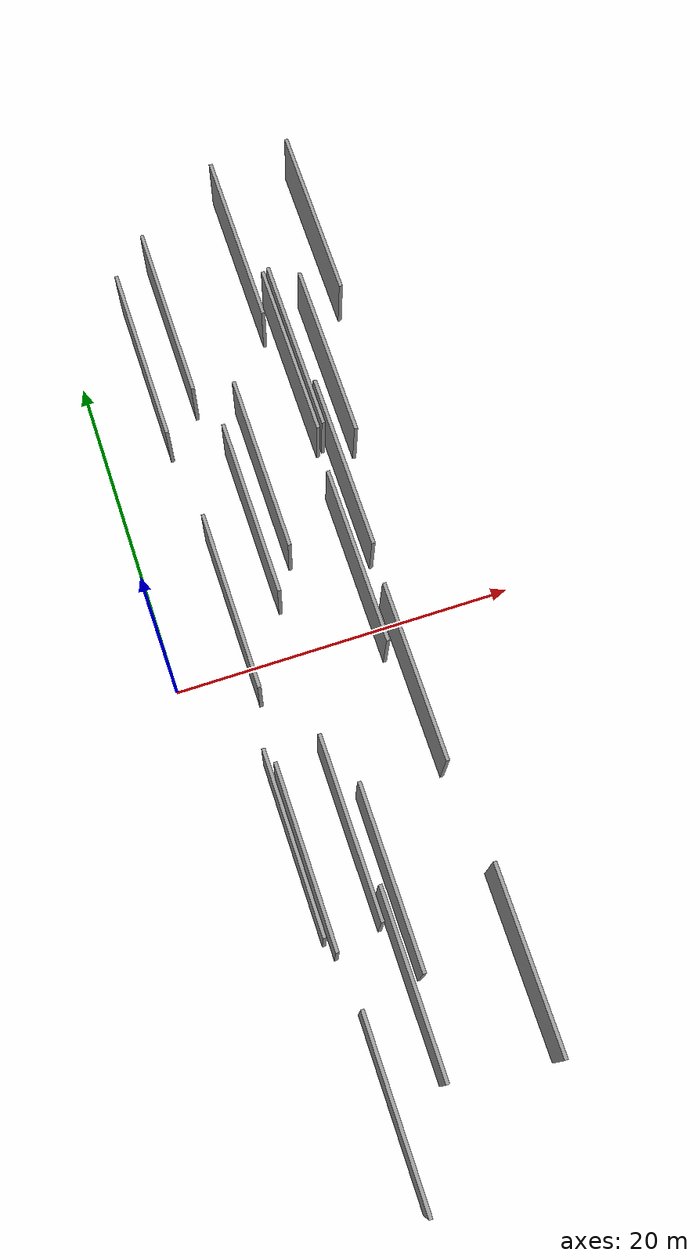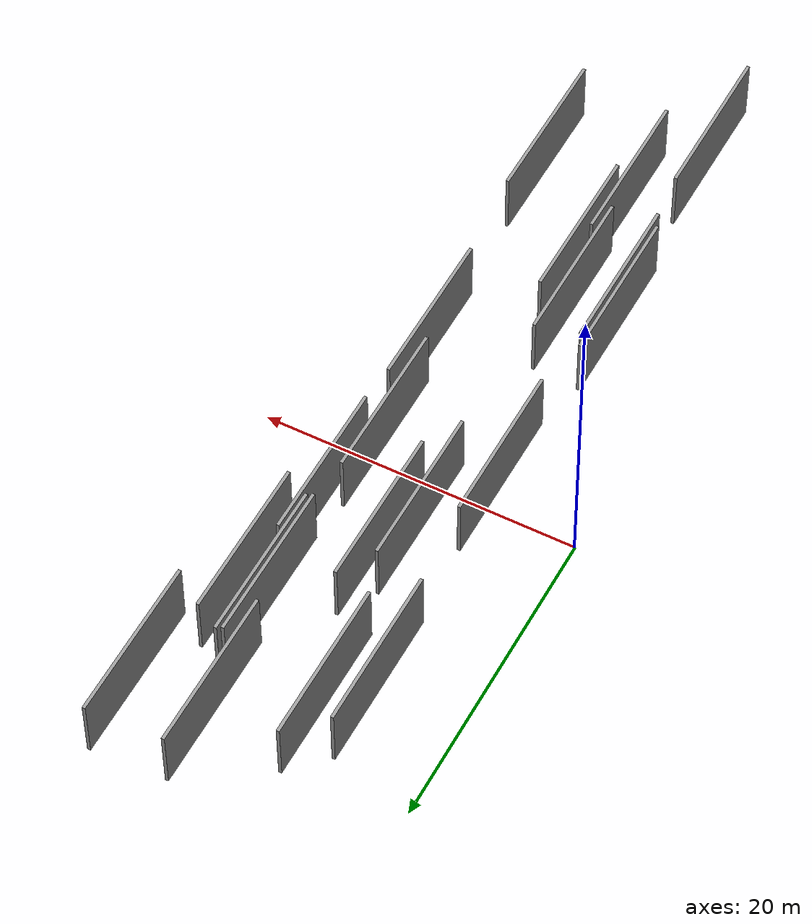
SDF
<sdf version="1.6">
 <world name="default">
  <scene>
   <sky><clouds><speed>12</speed></clouds></sky>
   <ambient>0.4 0.4 0.4 1</ambient>
   <background>0.7 0.7 0.7 1</background>
   <shadows>1</shadows>
  </scene>
  <gravity>0 0 -9.8066</gravity>
  <magnetic_field>6e-06 2.3e-05 -4.2e-05</magnetic_field>
  <physics default="0" name="default_physics" type="ode">
   <ode>
    <solver>
     <type>quick</type>
     <iters>10</iters>
     <sor>1.0</sor>
     <use_dynamic_moi_rescaling>0</use_dynamic_moi_rescaling>
    </solver>
    <constraints>
     <cfm>0</cfm>
     <erp>0.2</erp>
     <contact_max_correcting_vel>100</contact_max_correcting_vel>
     <contact_surface_layer>0.001</contact_surface_layer>
    </constraints>
   </ode>
   <max_step_size>0.004</max_step_size>
   <real_time_factor>1</real_time_factor>
   <real_time_update_rate>250</real_time_update_rate>
  </physics>
  <light name="sun" type="directional">
   <pose>0 0 10 0 0 0</pose>
   <diffuse>0.8 0.8 0.8 1</diffuse>
   <specular>0.2 0.2 0.2 1</specular>
   <attenuation>
    <range>1000</range>
    <constant>0.9</constant>
    <linear>0.01</linear>
    <quadratic>0.001</quadratic>
   </attenuation>
   <direction>-0.5 0.1 -0.9</direction>
  </light>
  <model name="grey_wall_1">
   <static>1</static>
   <pose>12.5194 -20.7181 5.0 0.000000 0.000000 1.570796</pose>
   <link name="link">
    <pose>0 0 2.00 0 0 0</pose>
    <collision name="collision"><geometry><box><size>10.00 0.2 4.00</size></box></geometry></collision>
    <visual name="visual">
     <cast_shadows>0</cast_shadows>
     <geometry><box><size>10.00 0.2 4.00</size></box></geometry>
     <material>
      <script>
       <uri>model://grey_wall/materials/scripts</uri>
       <uri>model://grey_wall/materials/textures</uri>
       <name>vrc/grey_wall</name>
      </script>
     </material>
    </visual>
   </link>
  </model>
  <model name="grey_wall_2">
   <static>1</static>
   <pose>3.9833 -25.4585 5.0 0.000000 0.000000 1.570796</pose>
   <link name="link">
    <pose>0 0 2.00 0 0 0</pose>
    <collision name="collision"><geometry><box><size>10.00 0.2 4.00</size></box></geometry></collision>
    <visual name="visual">
     <cast_shadows>0</cast_shadows>
     <geometry><box><size>10.00 0.2 4.00</size></box></geometry>
     <material>
      <script>
       <uri>model://grey_wall/materials/scripts</uri>
       <uri>model://grey_wall/materials/textures</uri>
       <name>vrc/grey_wall</name>
      </script>
     </material>
    </visual>
   </link>
  </model>
  <model name="grey_wall_3">
   <static>1</static>
   <pose>10.7550 21.8857 5.0 0.000000 0.000000 1.570796</pose>
   <link name="link">
    <pose>0 0 2.00 0 0 0</pose>
    <collision name="collision"><geometry><box><size>10.00 0.2 4.00</size></box></geometry></collision>
    <visual name="visual">
     <cast_shadows>0</cast_shadows>
     <geometry><box><size>10.00 0.2 4.00</size></box></geometry>
     <material>
      <script>
       <uri>model://grey_wall/materials/scripts</uri>
       <uri>model://grey_wall/materials/textures</uri>
       <name>vrc/grey_wall</name>
      </script>
     </material>
    </visual>
   </link>
  </model>
  <model name="grey_wall_4">
   <static>1</static>
   <pose>11.2011 1.7666 5.0 0.000000 0.000000 1.570796</pose>
   <link name="link">
    <pose>0 0 2.00 0 0 0</pose>
    <collision name="collision"><geometry><box><size>10.00 0.2 4.00</size></box></geometry></collision>
    <visual name="visual">
     <cast_shadows>0</cast_shadows>
     <geometry><box><size>10.00 0.2 4.00</size></box></geometry>
     <material>
      <script>
       <uri>model://grey_wall/materials/scripts</uri>
       <uri>model://grey_wall/materials/textures</uri>
       <name>vrc/grey_wall</name>
      </script>
     </material>
    </visual>
   </link>
  </model>
  <model name="grey_wall_5">
   <static>1</static>
   <pose>12.0166 -5.1796 5.0 0.000000 0.000000 1.570796</pose>
   <link name="link">
    <pose>0 0 2.00 0 0 0</pose>
    <collision name="collision"><geometry><box><size>10.00 0.2 4.00</size></box></geometry></collision>
    <visual name="visual">
     <cast_shadows>0</cast_shadows>
     <geometry><box><size>10.00 0.2 4.00</size></box></geometry>
     <material>
      <script>
       <uri>model://grey_wall/materials/scripts</uri>
       <uri>model://grey_wall/materials/textures</uri>
       <name>vrc/grey_wall</name>
      </script>
     </material>
    </visual>
   </link>
  </model>
  <model name="grey_wall_6">
   <static>1</static>
   <pose>6.6592 6.1158 5.0 0.000000 0.000000 1.570796</pose>
   <link name="link">
    <pose>0 0 2.00 0 0 0</pose>
    <collision name="collision"><geometry><box><size>10.00 0.2 4.00</size></box></geometry></collision>
    <visual name="visual">
     <cast_shadows>0</cast_shadows>
     <geometry><box><size>10.00 0.2 4.00</size></box></geometry>
     <material>
      <script>
       <uri>model://grey_wall/materials/scripts</uri>
       <uri>model://grey_wall/materials/textures</uri>
       <name>vrc/grey_wall</name>
      </script>
     </material>
    </visual>
   </link>
  </model>
  <model name="grey_wall_7">
   <static>1</static>
   <pose>11.8590 14.5193 5.0 0.000000 0.000000 1.570796</pose>
   <link name="link">
    <pose>0 0 2.00 0 0 0</pose>
    <collision name="collision"><geometry><box><size>10.00 0.2 4.00</size></box></geometry></collision>
    <visual name="visual">
     <cast_shadows>0</cast_shadows>
     <geometry><box><size>10.00 0.2 4.00</size></box></geometry>
     <material>
      <script>
       <uri>model://grey_wall/materials/scripts</uri>
       <uri>model://grey_wall/materials/textures</uri>
       <name>vrc/grey_wall</name>
      </script>
     </material>
    </visual>
   </link>
  </model>
  <model name="grey_wall_8">
   <static>1</static>
   <pose>6.2745 -11.8314 5.0 0.000000 0.000000 1.570796</pose>
   <link name="link">
    <pose>0 0 2.00 0 0 0</pose>
    <collision name="collision"><geometry><box><size>10.00 0.2 4.00</size></box></geometry></collision>
    <visual name="visual">
     <cast_shadows>0</cast_shadows>
     <geometry><box><size>10.00 0.2 4.00</size></box></geometry>
     <material>
      <script>
       <uri>model://grey_wall/materials/scripts</uri>
       <uri>model://grey_wall/materials/textures</uri>
       <name>vrc/grey_wall</name>
      </script>
     </material>
    </visual>
   </link>
  </model>
  <model name="grey_wall_9">
   <static>1</static>
   <pose>3.3178 -11.6795 5.0 0.000000 0.000000 1.570796</pose>
   <link name="link">
    <pose>0 0 2.00 0 0 0</pose>
    <collision name="collision"><geometry><box><size>10.00 0.2 4.00</size></box></geometry></collision>
    <visual name="visual">
     <cast_shadows>0</cast_shadows>
     <geometry><box><size>10.00 0.2 4.00</size></box></geometry>
     <material>
      <script>
       <uri>model://grey_wall/materials/scripts</uri>
       <uri>model://grey_wall/materials/textures</uri>
       <name>vrc/grey_wall</name>
      </script>
     </material>
    </visual>
   </link>
  </model>
  <model name="grey_wall_10">
   <static>1</static>
   <pose>7.9572 8.3793 5.0 0.000000 0.000000 1.570796</pose>
   <link name="link">
    <pose>0 0 2.00 0 0 0</pose>
    <collision name="collision"><geometry><box><size>10.00 0.2 4.00</size></box></geometry></collision>
    <visual name="visual">
     <cast_shadows>0</cast_shadows>
     <geometry><box><size>10.00 0.2 4.00</size></box></geometry>
     <material>
      <script>
       <uri>model://grey_wall/materials/scripts</uri>
       <uri>model://grey_wall/materials/textures</uri>
       <name>vrc/grey_wall</name>
      </script>
     </material>
    </visual>
   </link>
  </model>
  <model name="grey_wall_11">
   <static>1</static>
   <pose>11.5064 14.3454 5.0 0.000000 0.000000 1.570796</pose>
   <link name="link">
    <pose>0 0 2.00 0 0 0</pose>
    <collision name="collision"><geometry><box><size>10.00 0.2 4.00</size></box></geometry></collision>
    <visual name="visual">
     <cast_shadows>0</cast_shadows>
     <geometry><box><size>10.00 0.2 4.00</size></box></geometry>
     <material>
      <script>
       <uri>model://grey_wall/materials/scripts</uri>
       <uri>model://grey_wall/materials/textures</uri>
       <name>vrc/grey_wall</name>
      </script>
     </material>
    </visual>
   </link>
  </model>
  <model name="grey_wall_12">
   <static>1</static>
   <pose>15.3811 22.1482 5.0 0.000000 0.000000 1.570796</pose>
   <link name="link">
    <pose>0 0 2.00 0 0 0</pose>
    <collision name="collision"><geometry><box><size>10.00 0.2 4.00</size></box></geometry></collision>
    <visual name="visual">
     <cast_shadows>0</cast_shadows>
     <geometry><box><size>10.00 0.2 4.00</size></box></geometry>
     <material>
      <script>
       <uri>model://grey_wall/materials/scripts</uri>
       <uri>model://grey_wall/materials/textures</uri>
       <name>vrc/grey_wall</name>
      </script>
     </material>
    </visual>
   </link>
  </model>
  <model name="grey_wall_13">
   <static>1</static>
   <pose>4.0931 1.4488 5.0 0.000000 0.000000 1.570796</pose>
   <link name="link">
    <pose>0 0 2.00 0 0 0</pose>
    <collision name="collision"><geometry><box><size>10.00 0.2 4.00</size></box></geometry></collision>
    <visual name="visual">
     <cast_shadows>0</cast_shadows>
     <geometry><box><size>10.00 0.2 4.00</size></box></geometry>
     <material>
      <script>
       <uri>model://grey_wall/materials/scripts</uri>
       <uri>model://grey_wall/materials/textures</uri>
       <name>vrc/grey_wall</name>
      </script>
     </material>
    </visual>
   </link>
  </model>
  <model name="grey_wall_14">
   <static>1</static>
   <pose>3.6320 16.6103 5.0 0.000000 0.000000 1.570796</pose>
   <link name="link">
    <pose>0 0 2.00 0 0 0</pose>
    <collision name="collision"><geometry><box><size>10.00 0.2 4.00</size></box></geometry></collision>
    <visual name="visual">
     <cast_shadows>0</cast_shadows>
     <geometry><box><size>10.00 0.2 4.00</size></box></geometry>
     <material>
      <script>
       <uri>model://grey_wall/materials/scripts</uri>
       <uri>model://grey_wall/materials/textures</uri>
       <name>vrc/grey_wall</name>
      </script>
     </material>
    </visual>
   </link>
  </model>
  <model name="grey_wall_15">
   <static>1</static>
   <pose>7.4076 -14.8116 5.0 0.000000 0.000000 1.570796</pose>
   <link name="link">
    <pose>0 0 2.00 0 0 0</pose>
    <collision name="collision"><geometry><box><size>10.00 0.2 4.00</size></box></geometry></collision>
    <visual name="visual">
     <cast_shadows>0</cast_shadows>
     <geometry><box><size>10.00 0.2 4.00</size></box></geometry>
     <material>
      <script>
       <uri>model://grey_wall/materials/scripts</uri>
       <uri>model://grey_wall/materials/textures</uri>
       <name>vrc/grey_wall</name>
      </script>
     </material>
    </visual>
   </link>
  </model>
  <model name="grey_wall_16">
   <static>1</static>
   <pose>6.7441 -20.0265 5.0 0.000000 0.000000 1.570796</pose>
   <link name="link">
    <pose>0 0 2.00 0 0 0</pose>
    <collision name="collision"><geometry><box><size>10.00 0.2 4.00</size></box></geometry></collision>
    <visual name="visual">
     <cast_shadows>0</cast_shadows>
     <geometry><box><size>10.00 0.2 4.00</size></box></geometry>
     <material>
      <script>
       <uri>model://grey_wall/materials/scripts</uri>
       <uri>model://grey_wall/materials/textures</uri>
       <name>vrc/grey_wall</name>
      </script>
     </material>
    </visual>
   </link>
  </model>
  <model name="grey_wall_17">
   <static>1</static>
   <pose>5.7139 18.6696 5.0 0.000000 0.000000 1.570796</pose>
   <link name="link">
    <pose>0 0 2.00 0 0 0</pose>
    <collision name="collision"><geometry><box><size>10.00 0.2 4.00</size></box></geometry></collision>
    <visual name="visual">
     <cast_shadows>0</cast_shadows>
     <geometry><box><size>10.00 0.2 4.00</size></box></geometry>
     <material>
      <script>
       <uri>model://grey_wall/materials/scripts</uri>
       <uri>model://grey_wall/materials/textures</uri>
       <name>vrc/grey_wall</name>
      </script>
     </material>
    </visual>
   </link>
  </model>
  <model name="grey_wall_18">
   <static>1</static>
   <pose>13.4315 13.6559 5.0 0.000000 0.000000 1.570796</pose>
   <link name="link">
    <pose>0 0 2.00 0 0 0</pose>
    <collision name="collision"><geometry><box><size>10.00 0.2 4.00</size></box></geometry></collision>
    <visual name="visual">
     <cast_shadows>0</cast_shadows>
     <geometry><box><size>10.00 0.2 4.00</size></box></geometry>
     <material>
      <script>
       <uri>model://grey_wall/materials/scripts</uri>
       <uri>model://grey_wall/materials/textures</uri>
       <name>vrc/grey_wall</name>
      </script>
     </material>
    </visual>
   </link>
  </model>
  <model name="grey_wall_19">
   <static>1</static>
   <pose>3.6857 -12.5373 5.0 0.000000 0.000000 1.570796</pose>
   <link name="link">
    <pose>0 0 2.00 0 0 0</pose>
    <collision name="collision"><geometry><box><size>10.00 0.2 4.00</size></box></geometry></collision>
    <visual name="visual">
     <cast_shadows>0</cast_shadows>
     <geometry><box><size>10.00 0.2 4.00</size></box></geometry>
     <material>
      <script>
       <uri>model://grey_wall/materials/scripts</uri>
       <uri>model://grey_wall/materials/textures</uri>
       <name>vrc/grey_wall</name>
      </script>
     </material>
    </visual>
   </link>
  </model>
  <model name="grey_wall_20">
   <static>1</static>
   <pose>12.2030 7.0953 5.0 0.000000 0.000000 1.570796</pose>
   <link name="link">
    <pose>0 0 2.00 0 0 0</pose>
    <collision name="collision"><geometry><box><size>10.00 0.2 4.00</size></box></geometry></collision>
    <visual name="visual">
     <cast_shadows>0</cast_shadows>
     <geometry><box><size>10.00 0.2 4.00</size></box></geometry>
     <material>
      <script>
       <uri>model://grey_wall/materials/scripts</uri>
       <uri>model://grey_wall/materials/textures</uri>
       <name>vrc/grey_wall</name>
      </script>
     </material>
    </visual>
   </link>
  </model>
 </world>
</sdf>
